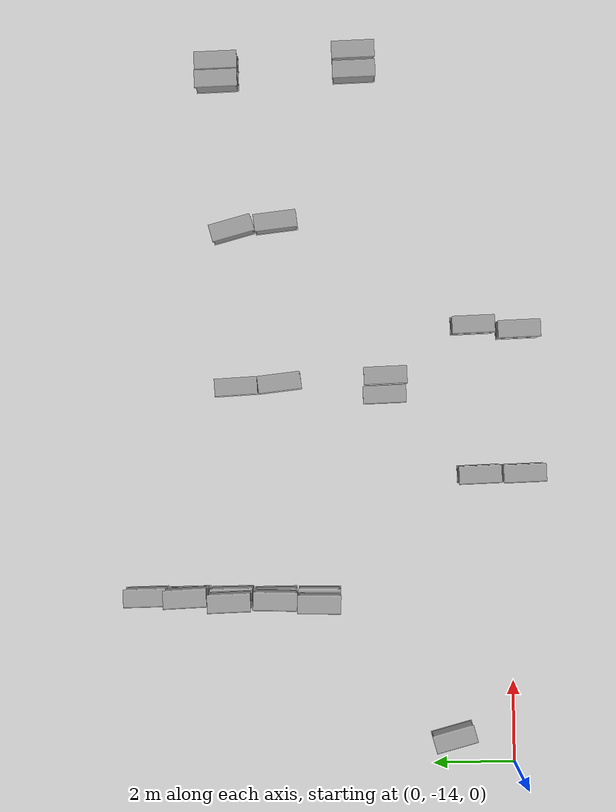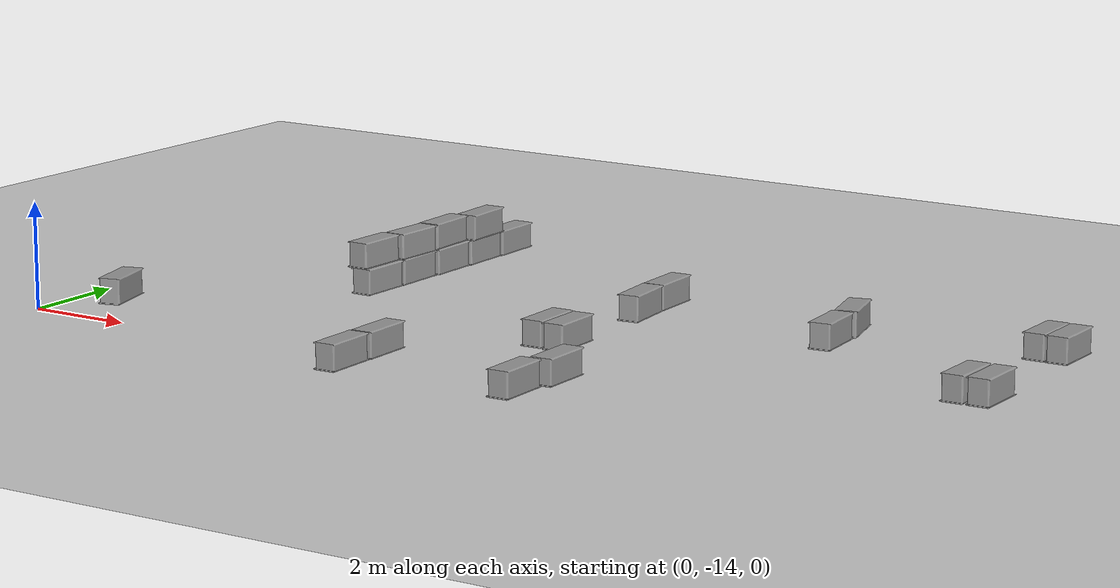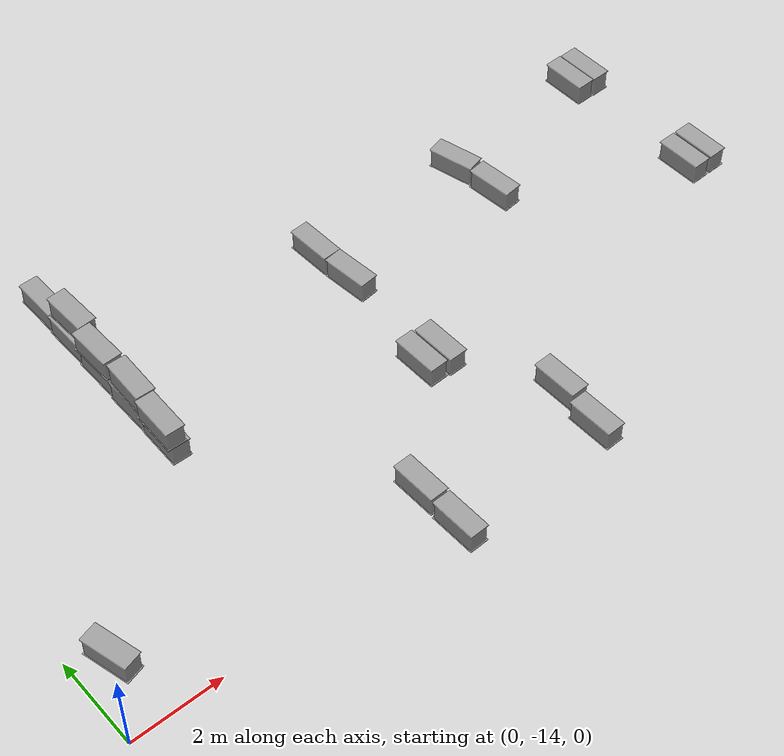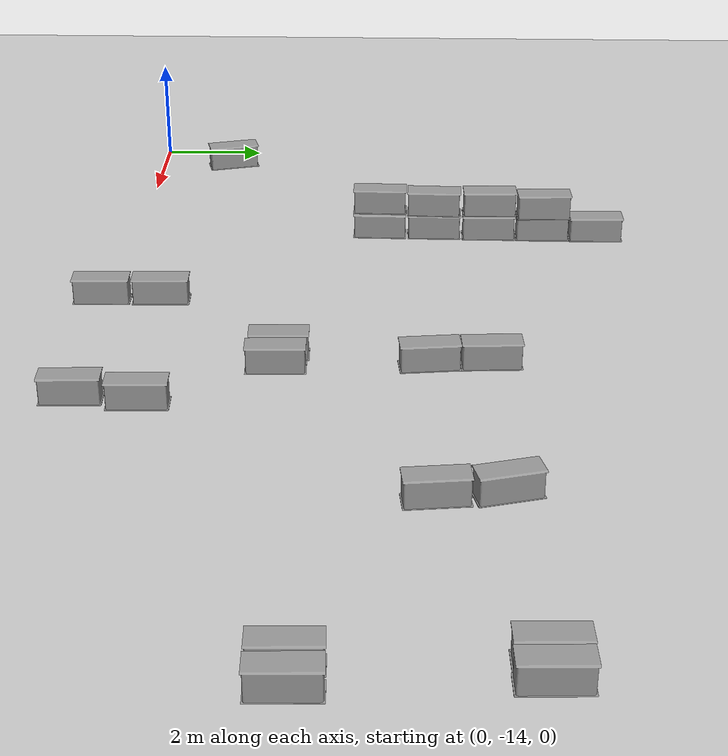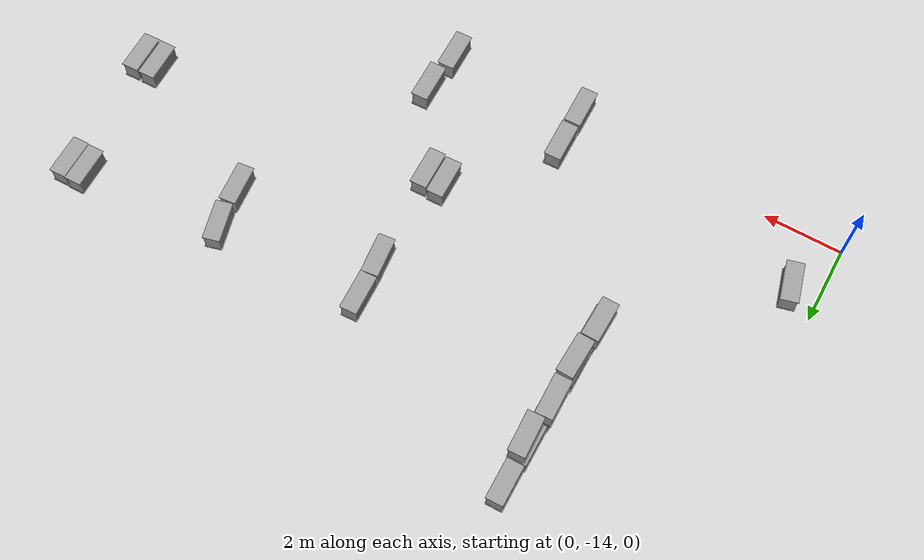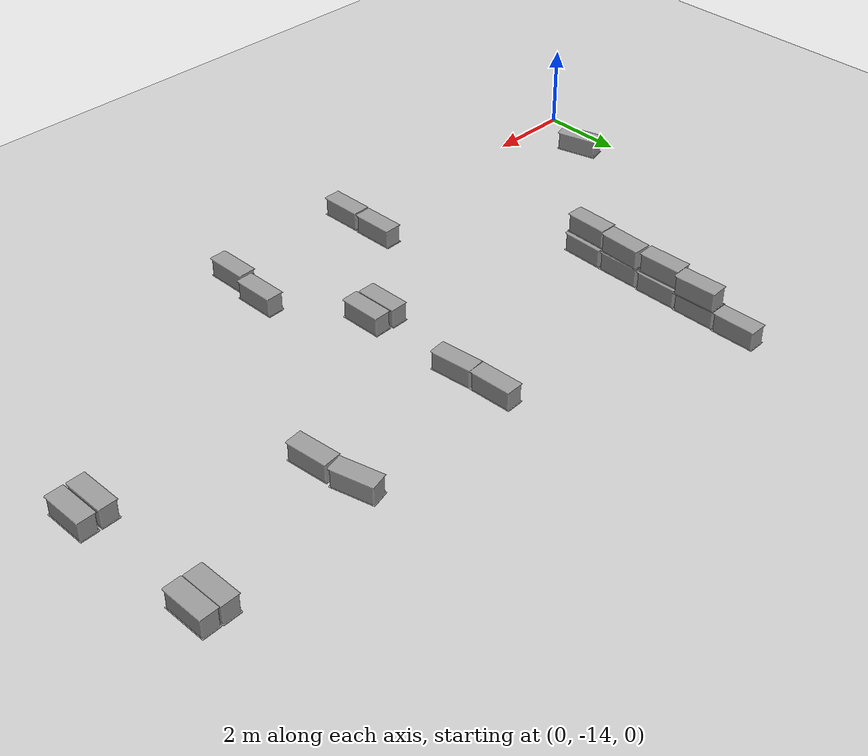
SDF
<sdf version="1.7">
 <world name="default">
  <model name="ground_plane">
   <static>1</static>
   <link name="link">
    <collision name="collision">
     <geometry><plane><normal>0 0 1</normal><size>100 100</size></plane></geometry>
     <surface>
      <contact><collide_bitmask>65535</collide_bitmask></contact>
      <friction><ode><mu>100</mu><mu2>50</mu2></ode></friction>
     </surface>
    </collision>
    <visual name="visual">
     <cast_shadows>0</cast_shadows>
     <geometry><plane><normal>0 0 1</normal><size>100 100</size></plane></geometry>
     <material>
      <script><uri>file://media/materials/scripts/gazebo.material</uri><name>Gazebo/Grey</name></script>
     </material>
    </visual>
   </link>
  </model>
  <model name="cotton_me_0_clone_6">
   <link name="link_1">
    <inertial>
     <mass>1</mass>
     <inertia>
      <ixx>0.166667</ixx>
      <ixy>0</ixy>
      <ixz>0</ixz>
      <iyy>0.166667</iyy>
      <iyz>0</iyz>
      <izz>0.166667</izz>
     </inertia>
    </inertial>
    <visual name="visual">
     <geometry><mesh><uri>/home/cyun/cotton_box.stl</uri><scale>1 1 1</scale></mesh></geometry>
     <material>
      <lighting>1</lighting>
      <script><uri>file://media/materials/scripts/gazebo.material</uri><name>Gazebo/Grey</name></script>
      <shader type="pixel"/>
     </material>
    </visual>
    <collision name="collision">
     <geometry><mesh><uri>/home/cyun/cotton_box.stl</uri><scale>1 1 1</scale></mesh></geometry>
     <surface>
      <friction>
       <ode><mu>1</mu><mu2>1</mu2><fdir1>0 0 0</fdir1><slip1>0</slip1><slip2>0</slip2></ode>
       <torsional>
        <coefficient>1</coefficient>
        <patch_radius>0</patch_radius>
        <surface_radius>0</surface_radius>
        <use_patch_radius>1</use_patch_radius>
        <ode><slip>0</slip></ode>
       </torsional>
      </friction>
      <bounce><restitution_coefficient>0</restitution_coefficient><threshold>1e+06</threshold></bounce>
      <contact>
       <collide_without_contact>0</collide_without_contact>
       <collide_without_contact_bitmask>1</collide_without_contact_bitmask>
       <collide_bitmask>1</collide_bitmask>
       <ode>
        <soft_cfm>0</soft_cfm>
        <soft_erp>0.2</soft_erp>
        <kp>1e+13</kp>
        <kd>1</kd>
        <max_vel>0.01</max_vel>
        <min_depth>0</min_depth>
       </ode>
       <bullet>
        <split_impulse>1</split_impulse>
        <split_impulse_penetration_threshold>-0.01</split_impulse_penetration_threshold>
        <soft_cfm>0</soft_cfm>
        <soft_erp>0.2</soft_erp>
        <kp>1e+13</kp>
        <kd>1</kd>
       </bullet>
      </contact>
     </surface>
    </collision>
   </link>
   <static>0</static>
   <pose>4.20703 -9.2423 0.02 -0 1e-06 -0.018184</pose>
  </model>
  <model name="cotton_me_0_clone_7">
   <link name="link_1">
    <inertial>
     <mass>1</mass>
     <inertia>
      <ixx>0.166667</ixx>
      <ixy>0</ixy>
      <ixz>0</ixz>
      <iyy>0.166667</iyy>
      <iyz>0</iyz>
      <izz>0.166667</izz>
     </inertia>
    </inertial>
    <visual name="visual">
     <geometry><mesh><uri>/home/cyun/cotton_box.stl</uri><scale>1 1 1</scale></mesh></geometry>
     <material>
      <lighting>1</lighting>
      <script><uri>file://media/materials/scripts/gazebo.material</uri><name>Gazebo/Grey</name></script>
      <shader type="pixel"/>
     </material>
    </visual>
    <collision name="collision">
     <geometry><mesh><uri>/home/cyun/cotton_box.stl</uri><scale>1 1 1</scale></mesh></geometry>
     <surface>
      <friction>
       <ode><mu>1</mu><mu2>1</mu2><fdir1>0 0 0</fdir1><slip1>0</slip1><slip2>0</slip2></ode>
       <torsional>
        <coefficient>1</coefficient>
        <patch_radius>0</patch_radius>
        <surface_radius>0</surface_radius>
        <use_patch_radius>1</use_patch_radius>
        <ode><slip>0</slip></ode>
       </torsional>
      </friction>
      <bounce><restitution_coefficient>0</restitution_coefficient><threshold>1e+06</threshold></bounce>
      <contact>
       <collide_without_contact>0</collide_without_contact>
       <collide_without_contact_bitmask>1</collide_without_contact_bitmask>
       <collide_bitmask>1</collide_bitmask>
       <ode>
        <soft_cfm>0</soft_cfm>
        <soft_erp>0.2</soft_erp>
        <kp>1e+13</kp>
        <kd>1</kd>
        <max_vel>0.01</max_vel>
        <min_depth>0</min_depth>
       </ode>
       <bullet>
        <split_impulse>1</split_impulse>
        <split_impulse_penetration_threshold>-0.01</split_impulse_penetration_threshold>
        <soft_cfm>0</soft_cfm>
        <soft_erp>0.2</soft_erp>
        <kp>1e+13</kp>
        <kd>1</kd>
       </bullet>
      </contact>
     </surface>
    </collision>
   </link>
   <static>0</static>
   <pose>4.22059 -8.17188 0.01992 4e-06 1.7e-05 0.004364</pose>
  </model>
  <model name="cotton_me_0_clone_8">
   <link name="link_1">
    <inertial>
     <mass>1</mass>
     <inertia>
      <ixx>0.166667</ixx>
      <ixy>0</ixy>
      <ixz>0</ixz>
      <iyy>0.166667</iyy>
      <iyz>0</iyz>
      <izz>0.166667</izz>
     </inertia>
    </inertial>
    <visual name="visual">
     <geometry><mesh><uri>/home/cyun/cotton_box.stl</uri><scale>1 1 1</scale></mesh></geometry>
     <material>
      <lighting>1</lighting>
      <script><uri>file://media/materials/scripts/gazebo.material</uri><name>Gazebo/Grey</name></script>
      <shader type="pixel"/>
     </material>
    </visual>
    <collision name="collision">
     <geometry><mesh><uri>/home/cyun/cotton_box.stl</uri><scale>1 1 1</scale></mesh></geometry>
     <surface>
      <friction>
       <ode><mu>1</mu><mu2>1</mu2><fdir1>0 0 0</fdir1><slip1>0</slip1><slip2>0</slip2></ode>
       <torsional>
        <coefficient>1</coefficient>
        <patch_radius>0</patch_radius>
        <surface_radius>0</surface_radius>
        <use_patch_radius>1</use_patch_radius>
        <ode><slip>0</slip></ode>
       </torsional>
      </friction>
      <bounce><restitution_coefficient>0</restitution_coefficient><threshold>1e+06</threshold></bounce>
      <contact>
       <collide_without_contact>0</collide_without_contact>
       <collide_without_contact_bitmask>1</collide_without_contact_bitmask>
       <collide_bitmask>1</collide_bitmask>
       <ode>
        <soft_cfm>0</soft_cfm>
        <soft_erp>0.2</soft_erp>
        <kp>1e+13</kp>
        <kd>1</kd>
        <max_vel>0.01</max_vel>
        <min_depth>0</min_depth>
       </ode>
       <bullet>
        <split_impulse>1</split_impulse>
        <split_impulse_penetration_threshold>-0.01</split_impulse_penetration_threshold>
        <soft_cfm>0</soft_cfm>
        <soft_erp>0.2</soft_erp>
        <kp>1e+13</kp>
        <kd>1</kd>
       </bullet>
      </contact>
     </surface>
    </collision>
   </link>
   <static>0</static>
   <pose>4.24244 -7.09633 0.02 0 -0 0.008085</pose>
  </model>
  <model name="cotton_me_0_clone_9">
   <link name="link_1">
    <inertial>
     <mass>1</mass>
     <inertia>
      <ixx>0.166667</ixx>
      <ixy>0</ixy>
      <ixz>0</ixz>
      <iyy>0.166667</iyy>
      <iyz>0</iyz>
      <izz>0.166667</izz>
     </inertia>
    </inertial>
    <visual name="visual">
     <geometry><mesh><uri>/home/cyun/cotton_box.stl</uri><scale>1 1 1</scale></mesh></geometry>
     <material>
      <lighting>1</lighting>
      <script><uri>file://media/materials/scripts/gazebo.material</uri><name>Gazebo/Grey</name></script>
      <shader type="pixel"/>
     </material>
    </visual>
    <collision name="collision">
     <geometry><mesh><uri>/home/cyun/cotton_box.stl</uri><scale>1 1 1</scale></mesh></geometry>
     <surface>
      <friction>
       <ode><mu>1</mu><mu2>1</mu2><fdir1>0 0 0</fdir1><slip1>0</slip1><slip2>0</slip2></ode>
       <torsional>
        <coefficient>1</coefficient>
        <patch_radius>0</patch_radius>
        <surface_radius>0</surface_radius>
        <use_patch_radius>1</use_patch_radius>
        <ode><slip>0</slip></ode>
       </torsional>
      </friction>
      <bounce><restitution_coefficient>0</restitution_coefficient><threshold>1e+06</threshold></bounce>
      <contact>
       <collide_without_contact>0</collide_without_contact>
       <collide_without_contact_bitmask>1</collide_without_contact_bitmask>
       <collide_bitmask>1</collide_bitmask>
       <ode>
        <soft_cfm>0</soft_cfm>
        <soft_erp>0.2</soft_erp>
        <kp>1e+13</kp>
        <kd>1</kd>
        <max_vel>0.01</max_vel>
        <min_depth>0</min_depth>
       </ode>
       <bullet>
        <split_impulse>1</split_impulse>
        <split_impulse_penetration_threshold>-0.01</split_impulse_penetration_threshold>
        <soft_cfm>0</soft_cfm>
        <soft_erp>0.2</soft_erp>
        <kp>1e+13</kp>
        <kd>1</kd>
       </bullet>
      </contact>
     </surface>
    </collision>
   </link>
   <static>0</static>
   <pose>4.25169 -6.03786 0.019958 7e-06 8e-06 0.013362</pose>
  </model>
  <model name="cotton_me_0_clone_10">
   <link name="link_1">
    <inertial>
     <mass>1</mass>
     <inertia>
      <ixx>0.166667</ixx>
      <ixy>0</ixy>
      <ixz>0</ixz>
      <iyy>0.166667</iyy>
      <iyz>0</iyz>
      <izz>0.166667</izz>
     </inertia>
    </inertial>
    <visual name="visual">
     <geometry><mesh><uri>/home/cyun/cotton_box.stl</uri><scale>1 1 1</scale></mesh></geometry>
     <material>
      <lighting>1</lighting>
      <script><uri>file://media/materials/scripts/gazebo.material</uri><name>Gazebo/Grey</name></script>
      <shader type="pixel"/>
     </material>
    </visual>
    <collision name="collision">
     <geometry><mesh><uri>/home/cyun/cotton_box.stl</uri><scale>1 1 1</scale></mesh></geometry>
     <surface>
      <friction>
       <ode><mu>1</mu><mu2>1</mu2><fdir1>0 0 0</fdir1><slip1>0</slip1><slip2>0</slip2></ode>
       <torsional>
        <coefficient>1</coefficient>
        <patch_radius>0</patch_radius>
        <surface_radius>0</surface_radius>
        <use_patch_radius>1</use_patch_radius>
        <ode><slip>0</slip></ode>
       </torsional>
      </friction>
      <bounce><restitution_coefficient>0</restitution_coefficient><threshold>1e+06</threshold></bounce>
      <contact>
       <collide_without_contact>0</collide_without_contact>
       <collide_without_contact_bitmask>1</collide_without_contact_bitmask>
       <collide_bitmask>1</collide_bitmask>
       <ode>
        <soft_cfm>0</soft_cfm>
        <soft_erp>0.2</soft_erp>
        <kp>1e+13</kp>
        <kd>1</kd>
        <max_vel>0.01</max_vel>
        <min_depth>0</min_depth>
       </ode>
       <bullet>
        <split_impulse>1</split_impulse>
        <split_impulse_penetration_threshold>-0.01</split_impulse_penetration_threshold>
        <soft_cfm>0</soft_cfm>
        <soft_erp>0.2</soft_erp>
        <kp>1e+13</kp>
        <kd>1</kd>
       </bullet>
      </contact>
     </surface>
    </collision>
   </link>
   <static>0</static>
   <pose>4.26118 -4.9877 0.01988 1e-06 2e-06 0.01653</pose>
  </model>
  <model name="cotton_me_0_clone_13">
   <link name="link_1">
    <inertial>
     <mass>1</mass>
     <inertia>
      <ixx>0.166667</ixx>
      <ixy>0</ixy>
      <ixz>0</ixz>
      <iyy>0.166667</iyy>
      <iyz>0</iyz>
      <izz>0.166667</izz>
     </inertia>
    </inertial>
    <visual name="visual">
     <geometry><mesh><uri>/home/cyun/cotton_box.stl</uri><scale>1 1 1</scale></mesh></geometry>
     <material>
      <lighting>1</lighting>
      <script><uri>file://media/materials/scripts/gazebo.material</uri><name>Gazebo/Grey</name></script>
      <shader type="pixel"/>
     </material>
    </visual>
    <collision name="collision">
     <geometry><mesh><uri>/home/cyun/cotton_box.stl</uri><scale>1 1 1</scale></mesh></geometry>
     <surface>
      <friction>
       <ode><mu>1</mu><mu2>1</mu2><fdir1>0 0 0</fdir1><slip1>0</slip1><slip2>0</slip2></ode>
       <torsional>
        <coefficient>1</coefficient>
        <patch_radius>0</patch_radius>
        <surface_radius>0</surface_radius>
        <use_patch_radius>1</use_patch_radius>
        <ode><slip>0</slip></ode>
       </torsional>
      </friction>
      <bounce><restitution_coefficient>0</restitution_coefficient><threshold>1e+06</threshold></bounce>
      <contact>
       <collide_without_contact>0</collide_without_contact>
       <collide_without_contact_bitmask>1</collide_without_contact_bitmask>
       <collide_bitmask>1</collide_bitmask>
       <ode>
        <soft_cfm>0</soft_cfm>
        <soft_erp>0.2</soft_erp>
        <kp>1e+13</kp>
        <kd>1</kd>
        <max_vel>0.01</max_vel>
        <min_depth>0</min_depth>
       </ode>
       <bullet>
        <split_impulse>1</split_impulse>
        <split_impulse_penetration_threshold>-0.01</split_impulse_penetration_threshold>
        <soft_cfm>0</soft_cfm>
        <soft_erp>0.2</soft_erp>
        <kp>1e+13</kp>
        <kd>1</kd>
       </bullet>
      </contact>
     </surface>
    </collision>
   </link>
   <static>0</static>
   <pose>0.710491 -12.4974 0.019995 1e-05 -0 0.263069</pose>
  </model>
  <model name="cotton_me_0_clone_6_clone">
   <link name="link_1">
    <inertial>
     <mass>1</mass>
     <inertia>
      <ixx>0.166667</ixx>
      <ixy>0</ixy>
      <ixz>0</ixz>
      <iyy>0.166667</iyy>
      <iyz>0</iyz>
      <izz>0.166667</izz>
     </inertia>
    </inertial>
    <visual name="visual">
     <geometry><mesh><uri>/home/cyun/cotton_box.stl</uri><scale>1 1 1</scale></mesh></geometry>
     <material>
      <lighting>1</lighting>
      <script><uri>file://media/materials/scripts/gazebo.material</uri><name>Gazebo/Grey</name></script>
      <shader type="pixel"/>
     </material>
    </visual>
    <collision name="collision">
     <geometry><mesh><uri>/home/cyun/cotton_box.stl</uri><scale>1 1 1</scale></mesh></geometry>
     <surface>
      <friction>
       <ode><mu>1</mu><mu2>1</mu2><fdir1>0 0 0</fdir1><slip1>0</slip1><slip2>0</slip2></ode>
       <torsional>
        <coefficient>1</coefficient>
        <patch_radius>0</patch_radius>
        <surface_radius>0</surface_radius>
        <use_patch_radius>1</use_patch_radius>
        <ode><slip>0</slip></ode>
       </torsional>
      </friction>
      <bounce><restitution_coefficient>0</restitution_coefficient><threshold>1e+06</threshold></bounce>
      <contact>
       <collide_without_contact>0</collide_without_contact>
       <collide_without_contact_bitmask>1</collide_without_contact_bitmask>
       <collide_bitmask>1</collide_bitmask>
       <ode>
        <soft_cfm>0</soft_cfm>
        <soft_erp>0.2</soft_erp>
        <kp>1e+13</kp>
        <kd>1</kd>
        <max_vel>0.01</max_vel>
        <min_depth>0</min_depth>
       </ode>
       <bullet>
        <split_impulse>1</split_impulse>
        <split_impulse_penetration_threshold>-0.01</split_impulse_penetration_threshold>
        <soft_cfm>0</soft_cfm>
        <soft_erp>0.2</soft_erp>
        <kp>1e+13</kp>
        <kd>1</kd>
       </bullet>
      </contact>
     </surface>
    </collision>
   </link>
   <static>0</static>
   <pose>4.13047 -9.2431 0.510001 1e-06 -2e-06 -0.021211</pose>
  </model>
  <model name="cotton_me_0_clone_6_clone_clone">
   <link name="link_1">
    <inertial>
     <mass>1</mass>
     <inertia>
      <ixx>0.166667</ixx>
      <ixy>0</ixy>
      <ixz>0</ixz>
      <iyy>0.166667</iyy>
      <iyz>0</iyz>
      <izz>0.166667</izz>
     </inertia>
    </inertial>
    <visual name="visual">
     <geometry><mesh><uri>/home/cyun/cotton_box.stl</uri><scale>1 1 1</scale></mesh></geometry>
     <material>
      <lighting>1</lighting>
      <script><uri>file://media/materials/scripts/gazebo.material</uri><name>Gazebo/Grey</name></script>
      <shader type="pixel"/>
     </material>
    </visual>
    <collision name="collision">
     <geometry><mesh><uri>/home/cyun/cotton_box.stl</uri><scale>1 1 1</scale></mesh></geometry>
     <surface>
      <friction>
       <ode><mu>1</mu><mu2>1</mu2><fdir1>0 0 0</fdir1><slip1>0</slip1><slip2>0</slip2></ode>
       <torsional>
        <coefficient>1</coefficient>
        <patch_radius>0</patch_radius>
        <surface_radius>0</surface_radius>
        <use_patch_radius>1</use_patch_radius>
        <ode><slip>0</slip></ode>
       </torsional>
      </friction>
      <bounce><restitution_coefficient>0</restitution_coefficient><threshold>1e+06</threshold></bounce>
      <contact>
       <collide_without_contact>0</collide_without_contact>
       <collide_without_contact_bitmask>1</collide_without_contact_bitmask>
       <collide_bitmask>1</collide_bitmask>
       <ode>
        <soft_cfm>0</soft_cfm>
        <soft_erp>0.2</soft_erp>
        <kp>1e+13</kp>
        <kd>1</kd>
        <max_vel>0.01</max_vel>
        <min_depth>0</min_depth>
       </ode>
       <bullet>
        <split_impulse>1</split_impulse>
        <split_impulse_penetration_threshold>-0.01</split_impulse_penetration_threshold>
        <soft_cfm>0</soft_cfm>
        <soft_erp>0.2</soft_erp>
        <kp>1e+13</kp>
        <kd>1</kd>
       </bullet>
      </contact>
     </surface>
    </collision>
   </link>
   <static>0</static>
   <pose>4.22074 -8.18186 0.509921 4e-06 1.4e-05 -0.0332</pose>
  </model>
  <model name="cotton_me_0_clone_6_clone_clone_0">
   <link name="link_1">
    <inertial>
     <mass>1</mass>
     <inertia>
      <ixx>0.166667</ixx>
      <ixy>0</ixy>
      <ixz>0</ixz>
      <iyy>0.166667</iyy>
      <iyz>0</iyz>
      <izz>0.166667</izz>
     </inertia>
    </inertial>
    <visual name="visual">
     <geometry><mesh><uri>/home/cyun/cotton_box.stl</uri><scale>1 1 1</scale></mesh></geometry>
     <material>
      <lighting>1</lighting>
      <script><uri>file://media/materials/scripts/gazebo.material</uri><name>Gazebo/Grey</name></script>
      <shader type="pixel"/>
     </material>
    </visual>
    <collision name="collision">
     <geometry><mesh><uri>/home/cyun/cotton_box.stl</uri><scale>1 1 1</scale></mesh></geometry>
     <surface>
      <friction>
       <ode><mu>1</mu><mu2>1</mu2><fdir1>0 0 0</fdir1><slip1>0</slip1><slip2>0</slip2></ode>
       <torsional>
        <coefficient>1</coefficient>
        <patch_radius>0</patch_radius>
        <surface_radius>0</surface_radius>
        <use_patch_radius>1</use_patch_radius>
        <ode><slip>0</slip></ode>
       </torsional>
      </friction>
      <bounce><restitution_coefficient>0</restitution_coefficient><threshold>1e+06</threshold></bounce>
      <contact>
       <collide_without_contact>0</collide_without_contact>
       <collide_without_contact_bitmask>1</collide_without_contact_bitmask>
       <collide_bitmask>1</collide_bitmask>
       <ode>
        <soft_cfm>0</soft_cfm>
        <soft_erp>0.2</soft_erp>
        <kp>1e+13</kp>
        <kd>1</kd>
        <max_vel>0.01</max_vel>
        <min_depth>0</min_depth>
       </ode>
       <bullet>
        <split_impulse>1</split_impulse>
        <split_impulse_penetration_threshold>-0.01</split_impulse_penetration_threshold>
        <soft_cfm>0</soft_cfm>
        <soft_erp>0.2</soft_erp>
        <kp>1e+13</kp>
        <kd>1</kd>
       </bullet>
      </contact>
     </surface>
    </collision>
   </link>
   <static>0</static>
   <pose>4.19469 -7.08571 0.51 2e-06 3e-06 0.030379</pose>
  </model>
  <model name="cotton_me_0_clone_6_clone_clone_1">
   <link name="link_1">
    <inertial>
     <mass>1</mass>
     <inertia>
      <ixx>0.166667</ixx>
      <ixy>0</ixy>
      <ixz>0</ixz>
      <iyy>0.166667</iyy>
      <iyz>0</iyz>
      <izz>0.166667</izz>
     </inertia>
    </inertial>
    <visual name="visual">
     <geometry><mesh><uri>/home/cyun/cotton_box.stl</uri><scale>1 1 1</scale></mesh></geometry>
     <material>
      <lighting>1</lighting>
      <script><uri>file://media/materials/scripts/gazebo.material</uri><name>Gazebo/Grey</name></script>
      <shader type="pixel"/>
     </material>
    </visual>
    <collision name="collision">
     <geometry><mesh><uri>/home/cyun/cotton_box.stl</uri><scale>1 1 1</scale></mesh></geometry>
     <surface>
      <friction>
       <ode><mu>1</mu><mu2>1</mu2><fdir1>0 0 0</fdir1><slip1>0</slip1><slip2>0</slip2></ode>
       <torsional>
        <coefficient>1</coefficient>
        <patch_radius>0</patch_radius>
        <surface_radius>0</surface_radius>
        <use_patch_radius>1</use_patch_radius>
        <ode><slip>0</slip></ode>
       </torsional>
      </friction>
      <bounce><restitution_coefficient>0</restitution_coefficient><threshold>1e+06</threshold></bounce>
      <contact>
       <collide_without_contact>0</collide_without_contact>
       <collide_without_contact_bitmask>1</collide_without_contact_bitmask>
       <collide_bitmask>1</collide_bitmask>
       <ode>
        <soft_cfm>0</soft_cfm>
        <soft_erp>0.2</soft_erp>
        <kp>1e+13</kp>
        <kd>1</kd>
        <max_vel>0.01</max_vel>
        <min_depth>0</min_depth>
       </ode>
       <bullet>
        <split_impulse>1</split_impulse>
        <split_impulse_penetration_threshold>-0.01</split_impulse_penetration_threshold>
        <soft_cfm>0</soft_cfm>
        <soft_erp>0.2</soft_erp>
        <kp>1e+13</kp>
        <kd>1</kd>
       </bullet>
      </contact>
     </surface>
    </collision>
   </link>
   <static>0</static>
   <pose>4.31648 -6.03112 0.509973 5.7e-05 1.3e-05 0.042706</pose>
  </model>
  <model name="cotton_me_0_clone_13_clone">
   <link name="link_1">
    <inertial>
     <mass>1</mass>
     <inertia>
      <ixx>0.166667</ixx>
      <ixy>0</ixy>
      <ixz>0</ixz>
      <iyy>0.166667</iyy>
      <iyz>0</iyz>
      <izz>0.166667</izz>
     </inertia>
    </inertial>
    <visual name="visual">
     <geometry><mesh><uri>/home/cyun/cotton_box.stl</uri><scale>1 1 1</scale></mesh></geometry>
     <material>
      <lighting>1</lighting>
      <script><uri>file://media/materials/scripts/gazebo.material</uri><name>Gazebo/Grey</name></script>
      <shader type="pixel"/>
     </material>
    </visual>
    <collision name="collision">
     <geometry><mesh><uri>/home/cyun/cotton_box.stl</uri><scale>1 1 1</scale></mesh></geometry>
     <surface>
      <friction>
       <ode><mu>1</mu><mu2>1</mu2><fdir1>0 0 0</fdir1><slip1>0</slip1><slip2>0</slip2></ode>
       <torsional>
        <coefficient>1</coefficient>
        <patch_radius>0</patch_radius>
        <surface_radius>0</surface_radius>
        <use_patch_radius>1</use_patch_radius>
        <ode><slip>0</slip></ode>
       </torsional>
      </friction>
      <bounce><restitution_coefficient>0</restitution_coefficient><threshold>1e+06</threshold></bounce>
      <contact>
       <collide_without_contact>0</collide_without_contact>
       <collide_without_contact_bitmask>1</collide_without_contact_bitmask>
       <collide_bitmask>1</collide_bitmask>
       <ode>
        <soft_cfm>0</soft_cfm>
        <soft_erp>0.2</soft_erp>
        <kp>1e+13</kp>
        <kd>1</kd>
        <max_vel>0.01</max_vel>
        <min_depth>0</min_depth>
       </ode>
       <bullet>
        <split_impulse>1</split_impulse>
        <split_impulse_penetration_threshold>-0.01</split_impulse_penetration_threshold>
        <soft_cfm>0</soft_cfm>
        <soft_erp>0.2</soft_erp>
        <kp>1e+13</kp>
        <kd>1</kd>
       </bullet>
      </contact>
     </surface>
    </collision>
   </link>
   <static>0</static>
   <pose>9.45494 -8.334 0.019992 -1.6e-05 0 0.111059</pose>
  </model>
  <model name="cotton_me_0_clone_13_clone_clone">
   <link name="link_1">
    <inertial>
     <mass>1</mass>
     <inertia>
      <ixx>0.166667</ixx>
      <ixy>0</ixy>
      <ixz>0</ixz>
      <iyy>0.166667</iyy>
      <iyz>0</iyz>
      <izz>0.166667</izz>
     </inertia>
    </inertial>
    <visual name="visual">
     <geometry><mesh><uri>/home/cyun/cotton_box.stl</uri><scale>1 1 1</scale></mesh></geometry>
     <material>
      <lighting>1</lighting>
      <script><uri>file://media/materials/scripts/gazebo.material</uri><name>Gazebo/Grey</name></script>
      <shader type="pixel"/>
     </material>
    </visual>
    <collision name="collision">
     <geometry><mesh><uri>/home/cyun/cotton_box.stl</uri><scale>1 1 1</scale></mesh></geometry>
     <surface>
      <friction>
       <ode><mu>1</mu><mu2>1</mu2><fdir1>0 0 0</fdir1><slip1>0</slip1><slip2>0</slip2></ode>
       <torsional>
        <coefficient>1</coefficient>
        <patch_radius>0</patch_radius>
        <surface_radius>0</surface_radius>
        <use_patch_radius>1</use_patch_radius>
        <ode><slip>0</slip></ode>
       </torsional>
      </friction>
      <bounce><restitution_coefficient>0</restitution_coefficient><threshold>1e+06</threshold></bounce>
      <contact>
       <collide_without_contact>0</collide_without_contact>
       <collide_without_contact_bitmask>1</collide_without_contact_bitmask>
       <collide_bitmask>1</collide_bitmask>
       <ode>
        <soft_cfm>0</soft_cfm>
        <soft_erp>0.2</soft_erp>
        <kp>1e+13</kp>
        <kd>1</kd>
        <max_vel>0.01</max_vel>
        <min_depth>0</min_depth>
       </ode>
       <bullet>
        <split_impulse>1</split_impulse>
        <split_impulse_penetration_threshold>-0.01</split_impulse_penetration_threshold>
        <soft_cfm>0</soft_cfm>
        <soft_erp>0.2</soft_erp>
        <kp>1e+13</kp>
        <kd>1</kd>
       </bullet>
      </contact>
     </surface>
    </collision>
   </link>
   <static>0</static>
   <pose>9.37199 -7.28478 0.019992 -1.6e-05 0 0.051878</pose>
  </model>
  <model name="cotton_me_0_clone_13_clone_clone_0">
   <link name="link_1">
    <inertial>
     <mass>1</mass>
     <inertia>
      <ixx>0.166667</ixx>
      <ixy>0</ixy>
      <ixz>0</ixz>
      <iyy>0.166667</iyy>
      <iyz>0</iyz>
      <izz>0.166667</izz>
     </inertia>
    </inertial>
    <visual name="visual">
     <geometry><mesh><uri>/home/cyun/cotton_box.stl</uri><scale>1 1 1</scale></mesh></geometry>
     <material>
      <lighting>1</lighting>
      <script><uri>file://media/materials/scripts/gazebo.material</uri><name>Gazebo/Grey</name></script>
      <shader type="pixel"/>
     </material>
    </visual>
    <collision name="collision">
     <geometry><mesh><uri>/home/cyun/cotton_box.stl</uri><scale>1 1 1</scale></mesh></geometry>
     <surface>
      <friction>
       <ode><mu>1</mu><mu2>1</mu2><fdir1>0 0 0</fdir1><slip1>0</slip1><slip2>0</slip2></ode>
       <torsional>
        <coefficient>1</coefficient>
        <patch_radius>0</patch_radius>
        <surface_radius>0</surface_radius>
        <use_patch_radius>1</use_patch_radius>
        <ode><slip>0</slip></ode>
       </torsional>
      </friction>
      <bounce><restitution_coefficient>0</restitution_coefficient><threshold>1e+06</threshold></bounce>
      <contact>
       <collide_without_contact>0</collide_without_contact>
       <collide_without_contact_bitmask>1</collide_without_contact_bitmask>
       <collide_bitmask>1</collide_bitmask>
       <ode>
        <soft_cfm>0</soft_cfm>
        <soft_erp>0.2</soft_erp>
        <kp>1e+13</kp>
        <kd>1</kd>
        <max_vel>0.01</max_vel>
        <min_depth>0</min_depth>
       </ode>
       <bullet>
        <split_impulse>1</split_impulse>
        <split_impulse_penetration_threshold>-0.01</split_impulse_penetration_threshold>
        <soft_cfm>0</soft_cfm>
        <soft_erp>0.2</soft_erp>
        <kp>1e+13</kp>
        <kd>1</kd>
       </bullet>
      </contact>
     </surface>
    </collision>
   </link>
   <static>0</static>
   <pose>13.3921 -8.29623 0.019992 -1.6e-05 -0 0.111034</pose>
  </model>
  <model name="cotton_me_0_clone_13_clone_0">
   <link name="link_1">
    <inertial>
     <mass>1</mass>
     <inertia>
      <ixx>0.166667</ixx>
      <ixy>0</ixy>
      <ixz>0</ixz>
      <iyy>0.166667</iyy>
      <iyz>0</iyz>
      <izz>0.166667</izz>
     </inertia>
    </inertial>
    <visual name="visual">
     <geometry><mesh><uri>/home/cyun/cotton_box.stl</uri><scale>1 1 1</scale></mesh></geometry>
     <material>
      <lighting>1</lighting>
      <script><uri>file://media/materials/scripts/gazebo.material</uri><name>Gazebo/Grey</name></script>
      <shader type="pixel"/>
     </material>
    </visual>
    <collision name="collision">
     <geometry><mesh><uri>/home/cyun/cotton_box.stl</uri><scale>1 1 1</scale></mesh></geometry>
     <surface>
      <friction>
       <ode><mu>1</mu><mu2>1</mu2><fdir1>0 0 0</fdir1><slip1>0</slip1><slip2>0</slip2></ode>
       <torsional>
        <coefficient>1</coefficient>
        <patch_radius>0</patch_radius>
        <surface_radius>0</surface_radius>
        <use_patch_radius>1</use_patch_radius>
        <ode><slip>0</slip></ode>
       </torsional>
      </friction>
      <bounce><restitution_coefficient>0</restitution_coefficient><threshold>1e+06</threshold></bounce>
      <contact>
       <collide_without_contact>0</collide_without_contact>
       <collide_without_contact_bitmask>1</collide_without_contact_bitmask>
       <collide_bitmask>1</collide_bitmask>
       <ode>
        <soft_cfm>0</soft_cfm>
        <soft_erp>0.2</soft_erp>
        <kp>1e+13</kp>
        <kd>1</kd>
        <max_vel>0.01</max_vel>
        <min_depth>0</min_depth>
       </ode>
       <bullet>
        <split_impulse>1</split_impulse>
        <split_impulse_penetration_threshold>-0.01</split_impulse_penetration_threshold>
        <soft_cfm>0</soft_cfm>
        <soft_erp>0.2</soft_erp>
        <kp>1e+13</kp>
        <kd>1</kd>
       </bullet>
      </contact>
     </surface>
    </collision>
   </link>
   <static>0</static>
   <pose>13.2304 -7.2253 0.019995 -1e-05 -0 0.263069</pose>
  </model>
  <model name="cotton_me_0_clone_13_clone_4_clone_3">
   <link name="link_1">
    <inertial>
     <mass>1</mass>
     <inertia>
      <ixx>0.166667</ixx>
      <ixy>0</ixy>
      <ixz>0</ixz>
      <iyy>0.166667</iyy>
      <iyz>0</iyz>
      <izz>0.166667</izz>
     </inertia>
    </inertial>
    <visual name="visual">
     <geometry><mesh><uri>/home/cyun/cotton_box.stl</uri><scale>1 1 1</scale></mesh></geometry>
     <material>
      <lighting>1</lighting>
      <script><uri>file://media/materials/scripts/gazebo.material</uri><name>Gazebo/Grey</name></script>
      <shader type="pixel"/>
     </material>
    </visual>
    <collision name="collision">
     <geometry><mesh><uri>/home/cyun/cotton_box.stl</uri><scale>1 1 1</scale></mesh></geometry>
     <surface>
      <friction>
       <ode><mu>1</mu><mu2>1</mu2><fdir1>0 0 0</fdir1><slip1>0</slip1><slip2>0</slip2></ode>
       <torsional>
        <coefficient>1</coefficient>
        <patch_radius>0</patch_radius>
        <surface_radius>0</surface_radius>
        <use_patch_radius>1</use_patch_radius>
        <ode><slip>0</slip></ode>
       </torsional>
      </friction>
      <bounce><restitution_coefficient>0</restitution_coefficient><threshold>1e+06</threshold></bounce>
      <contact>
       <collide_without_contact>0</collide_without_contact>
       <collide_without_contact_bitmask>1</collide_without_contact_bitmask>
       <collide_bitmask>1</collide_bitmask>
       <ode>
        <soft_cfm>0</soft_cfm>
        <soft_erp>0.2</soft_erp>
        <kp>1e+13</kp>
        <kd>1</kd>
        <max_vel>0.01</max_vel>
        <min_depth>0</min_depth>
       </ode>
       <bullet>
        <split_impulse>1</split_impulse>
        <split_impulse_penetration_threshold>-0.01</split_impulse_penetration_threshold>
        <soft_cfm>0</soft_cfm>
        <soft_erp>0.2</soft_erp>
        <kp>1e+13</kp>
        <kd>1</kd>
       </bullet>
      </contact>
     </surface>
    </collision>
   </link>
   <static>0</static>
   <pose>17.0566 -10.263 0.019995 1e-05 0 0.031116</pose>
  </model>
  <model name="cotton_me_0_clone_13_clone_4_clone_4">
   <link name="link_1">
    <inertial>
     <mass>1</mass>
     <inertia>
      <ixx>0.166667</ixx>
      <ixy>0</ixy>
      <ixz>0</ixz>
      <iyy>0.166667</iyy>
      <iyz>0</iyz>
      <izz>0.166667</izz>
     </inertia>
    </inertial>
    <visual name="visual">
     <geometry><mesh><uri>/home/cyun/cotton_box.stl</uri><scale>1 1 1</scale></mesh></geometry>
     <material>
      <lighting>1</lighting>
      <script><uri>file://media/materials/scripts/gazebo.material</uri><name>Gazebo/Grey</name></script>
      <shader type="pixel"/>
     </material>
    </visual>
    <collision name="collision">
     <geometry><mesh><uri>/home/cyun/cotton_box.stl</uri><scale>1 1 1</scale></mesh></geometry>
     <surface>
      <friction>
       <ode><mu>1</mu><mu2>1</mu2><fdir1>0 0 0</fdir1><slip1>0</slip1><slip2>0</slip2></ode>
       <torsional>
        <coefficient>1</coefficient>
        <patch_radius>0</patch_radius>
        <surface_radius>0</surface_radius>
        <use_patch_radius>1</use_patch_radius>
        <ode><slip>0</slip></ode>
       </torsional>
      </friction>
      <bounce><restitution_coefficient>0</restitution_coefficient><threshold>1e+06</threshold></bounce>
      <contact>
       <collide_without_contact>0</collide_without_contact>
       <collide_without_contact_bitmask>1</collide_without_contact_bitmask>
       <collide_bitmask>1</collide_bitmask>
       <ode>
        <soft_cfm>0</soft_cfm>
        <soft_erp>0.2</soft_erp>
        <kp>1e+13</kp>
        <kd>1</kd>
        <max_vel>0.01</max_vel>
        <min_depth>0</min_depth>
       </ode>
       <bullet>
        <split_impulse>1</split_impulse>
        <split_impulse_penetration_threshold>-0.01</split_impulse_penetration_threshold>
        <soft_cfm>0</soft_cfm>
        <soft_erp>0.2</soft_erp>
        <kp>1e+13</kp>
        <kd>1</kd>
       </bullet>
      </contact>
     </surface>
    </collision>
   </link>
   <static>0</static>
   <pose>17.5318 -10.2499 0.019995 1e-05 0 0.031116</pose>
  </model>
  <model name="cotton_me_0_clone_13_clone_4_clone_5">
   <link name="link_1">
    <inertial>
     <mass>1</mass>
     <inertia>
      <ixx>0.166667</ixx>
      <ixy>0</ixy>
      <ixz>0</ixz>
      <iyy>0.166667</iyy>
      <iyz>0</iyz>
      <izz>0.166667</izz>
     </inertia>
    </inertial>
    <visual name="visual">
     <geometry><mesh><uri>/home/cyun/cotton_box.stl</uri><scale>1 1 1</scale></mesh></geometry>
     <material>
      <lighting>1</lighting>
      <script><uri>file://media/materials/scripts/gazebo.material</uri><name>Gazebo/Grey</name></script>
      <shader type="pixel"/>
     </material>
    </visual>
    <collision name="collision">
     <geometry><mesh><uri>/home/cyun/cotton_box.stl</uri><scale>1 1 1</scale></mesh></geometry>
     <surface>
      <friction>
       <ode><mu>1</mu><mu2>1</mu2><fdir1>0 0 0</fdir1><slip1>0</slip1><slip2>0</slip2></ode>
       <torsional>
        <coefficient>1</coefficient>
        <patch_radius>0</patch_radius>
        <surface_radius>0</surface_radius>
        <use_patch_radius>1</use_patch_radius>
        <ode><slip>0</slip></ode>
       </torsional>
      </friction>
      <bounce><restitution_coefficient>0</restitution_coefficient><threshold>1e+06</threshold></bounce>
      <contact>
       <collide_without_contact>0</collide_without_contact>
       <collide_without_contact_bitmask>1</collide_without_contact_bitmask>
       <collide_bitmask>1</collide_bitmask>
       <ode>
        <soft_cfm>0</soft_cfm>
        <soft_erp>0.2</soft_erp>
        <kp>1e+13</kp>
        <kd>1</kd>
        <max_vel>0.01</max_vel>
        <min_depth>0</min_depth>
       </ode>
       <bullet>
        <split_impulse>1</split_impulse>
        <split_impulse_penetration_threshold>-0.01</split_impulse_penetration_threshold>
        <soft_cfm>0</soft_cfm>
        <soft_erp>0.2</soft_erp>
        <kp>1e+13</kp>
        <kd>1</kd>
       </bullet>
      </contact>
     </surface>
    </collision>
   </link>
   <static>0</static>
   <pose>16.8757 -6.90285 0.019995 1e-05 0 0.031116</pose>
  </model>
  <model name="cotton_me_0_clone_13_clone_4_clone_6">
   <link name="link_1">
    <inertial>
     <mass>1</mass>
     <inertia>
      <ixx>0.166667</ixx>
      <ixy>0</ixy>
      <ixz>0</ixz>
      <iyy>0.166667</iyy>
      <iyz>0</iyz>
      <izz>0.166667</izz>
     </inertia>
    </inertial>
    <visual name="visual">
     <geometry><mesh><uri>/home/cyun/cotton_box.stl</uri><scale>1 1 1</scale></mesh></geometry>
     <material>
      <lighting>1</lighting>
      <script><uri>file://media/materials/scripts/gazebo.material</uri><name>Gazebo/Grey</name></script>
      <shader type="pixel"/>
     </material>
    </visual>
    <collision name="collision">
     <geometry><mesh><uri>/home/cyun/cotton_box.stl</uri><scale>1 1 1</scale></mesh></geometry>
     <surface>
      <friction>
       <ode><mu>1</mu><mu2>1</mu2><fdir1>0 0 0</fdir1><slip1>0</slip1><slip2>0</slip2></ode>
       <torsional>
        <coefficient>1</coefficient>
        <patch_radius>0</patch_radius>
        <surface_radius>0</surface_radius>
        <use_patch_radius>1</use_patch_radius>
        <ode><slip>0</slip></ode>
       </torsional>
      </friction>
      <bounce><restitution_coefficient>0</restitution_coefficient><threshold>1e+06</threshold></bounce>
      <contact>
       <collide_without_contact>0</collide_without_contact>
       <collide_without_contact_bitmask>1</collide_without_contact_bitmask>
       <collide_bitmask>1</collide_bitmask>
       <ode>
        <soft_cfm>0</soft_cfm>
        <soft_erp>0.2</soft_erp>
        <kp>1e+13</kp>
        <kd>1</kd>
        <max_vel>0.01</max_vel>
        <min_depth>0</min_depth>
       </ode>
       <bullet>
        <split_impulse>1</split_impulse>
        <split_impulse_penetration_threshold>-0.01</split_impulse_penetration_threshold>
        <soft_cfm>0</soft_cfm>
        <soft_erp>0.2</soft_erp>
        <kp>1e+13</kp>
        <kd>1</kd>
       </bullet>
      </contact>
     </surface>
    </collision>
   </link>
   <static>0</static>
   <pose>17.3205 -6.90355 0.019995 1e-05 0 0.031116</pose>
  </model>
  <model name="cotton_me_0_clone_13_clone_4_clone_7">
   <link name="link_1">
    <inertial>
     <mass>1</mass>
     <inertia>
      <ixx>0.166667</ixx>
      <ixy>0</ixy>
      <ixz>0</ixz>
      <iyy>0.166667</iyy>
      <iyz>0</iyz>
      <izz>0.166667</izz>
     </inertia>
    </inertial>
    <visual name="visual">
     <geometry><mesh><uri>/home/cyun/cotton_box.stl</uri><scale>1 1 1</scale></mesh></geometry>
     <material>
      <lighting>1</lighting>
      <script><uri>file://media/materials/scripts/gazebo.material</uri><name>Gazebo/Grey</name></script>
      <shader type="pixel"/>
     </material>
    </visual>
    <collision name="collision">
     <geometry><mesh><uri>/home/cyun/cotton_box.stl</uri><scale>1 1 1</scale></mesh></geometry>
     <surface>
      <friction>
       <ode><mu>1</mu><mu2>1</mu2><fdir1>0 0 0</fdir1><slip1>0</slip1><slip2>0</slip2></ode>
       <torsional>
        <coefficient>1</coefficient>
        <patch_radius>0</patch_radius>
        <surface_radius>0</surface_radius>
        <use_patch_radius>1</use_patch_radius>
        <ode><slip>0</slip></ode>
       </torsional>
      </friction>
      <bounce><restitution_coefficient>0</restitution_coefficient><threshold>1e+06</threshold></bounce>
      <contact>
       <collide_without_contact>0</collide_without_contact>
       <collide_without_contact_bitmask>1</collide_without_contact_bitmask>
       <collide_bitmask>1</collide_bitmask>
       <ode>
        <soft_cfm>0</soft_cfm>
        <soft_erp>0.2</soft_erp>
        <kp>1e+13</kp>
        <kd>1</kd>
        <max_vel>0.01</max_vel>
        <min_depth>0</min_depth>
       </ode>
       <bullet>
        <split_impulse>1</split_impulse>
        <split_impulse_penetration_threshold>-0.01</split_impulse_penetration_threshold>
        <soft_cfm>0</soft_cfm>
        <soft_erp>0.2</soft_erp>
        <kp>1e+13</kp>
        <kd>1</kd>
       </bullet>
      </contact>
     </surface>
    </collision>
   </link>
   <static>0</static>
   <pose>9.13072 -10.9024 0.019995 1e-05 0 0.031116</pose>
  </model>
  <model name="cotton_me_0_clone_13_clone_4_clone_8">
   <link name="link_1">
    <inertial>
     <mass>1</mass>
     <inertia>
      <ixx>0.166667</ixx>
      <ixy>0</ixy>
      <ixz>0</ixz>
      <iyy>0.166667</iyy>
      <iyz>0</iyz>
      <izz>0.166667</izz>
     </inertia>
    </inertial>
    <visual name="visual">
     <geometry><mesh><uri>/home/cyun/cotton_box.stl</uri><scale>1 1 1</scale></mesh></geometry>
     <material>
      <lighting>1</lighting>
      <script><uri>file://media/materials/scripts/gazebo.material</uri><name>Gazebo/Grey</name></script>
      <shader type="pixel"/>
     </material>
    </visual>
    <collision name="collision">
     <geometry><mesh><uri>/home/cyun/cotton_box.stl</uri><scale>1 1 1</scale></mesh></geometry>
     <surface>
      <friction>
       <ode><mu>1</mu><mu2>1</mu2><fdir1>0 0 0</fdir1><slip1>0</slip1><slip2>0</slip2></ode>
       <torsional>
        <coefficient>1</coefficient>
        <patch_radius>0</patch_radius>
        <surface_radius>0</surface_radius>
        <use_patch_radius>1</use_patch_radius>
        <ode><slip>0</slip></ode>
       </torsional>
      </friction>
      <bounce><restitution_coefficient>0</restitution_coefficient><threshold>1e+06</threshold></bounce>
      <contact>
       <collide_without_contact>0</collide_without_contact>
       <collide_without_contact_bitmask>1</collide_without_contact_bitmask>
       <collide_bitmask>1</collide_bitmask>
       <ode>
        <soft_cfm>0</soft_cfm>
        <soft_erp>0.2</soft_erp>
        <kp>1e+13</kp>
        <kd>1</kd>
        <max_vel>0.01</max_vel>
        <min_depth>0</min_depth>
       </ode>
       <bullet>
        <split_impulse>1</split_impulse>
        <split_impulse_penetration_threshold>-0.01</split_impulse_penetration_threshold>
        <soft_cfm>0</soft_cfm>
        <soft_erp>0.2</soft_erp>
        <kp>1e+13</kp>
        <kd>1</kd>
       </bullet>
      </contact>
     </surface>
    </collision>
   </link>
   <static>0</static>
   <pose>9.5959 -10.9292 0.019995 1e-05 0 0.031116</pose>
  </model>
  <model name="cotton_me_0_clone_13_clone_4_clone_9">
   <link name="link_1">
    <inertial>
     <mass>1</mass>
     <inertia>
      <ixx>0.166667</ixx>
      <ixy>0</ixy>
      <ixz>0</ixz>
      <iyy>0.166667</iyy>
      <iyz>0</iyz>
      <izz>0.166667</izz>
     </inertia>
    </inertial>
    <visual name="visual">
     <geometry><mesh><uri>/home/cyun/cotton_box.stl</uri><scale>1 1 1</scale></mesh></geometry>
     <material>
      <lighting>1</lighting>
      <script><uri>file://media/materials/scripts/gazebo.material</uri><name>Gazebo/Grey</name></script>
      <shader type="pixel"/>
     </material>
    </visual>
    <collision name="collision">
     <geometry><mesh><uri>/home/cyun/cotton_box.stl</uri><scale>1 1 1</scale></mesh></geometry>
     <surface>
      <friction>
       <ode><mu>1</mu><mu2>1</mu2><fdir1>0 0 0</fdir1><slip1>0</slip1><slip2>0</slip2></ode>
       <torsional>
        <coefficient>1</coefficient>
        <patch_radius>0</patch_radius>
        <surface_radius>0</surface_radius>
        <use_patch_radius>1</use_patch_radius>
        <ode><slip>0</slip></ode>
       </torsional>
      </friction>
      <bounce><restitution_coefficient>0</restitution_coefficient><threshold>1e+06</threshold></bounce>
      <contact>
       <collide_without_contact>0</collide_without_contact>
       <collide_without_contact_bitmask>1</collide_without_contact_bitmask>
       <collide_bitmask>1</collide_bitmask>
       <ode>
        <soft_cfm>0</soft_cfm>
        <soft_erp>0.2</soft_erp>
        <kp>1e+13</kp>
        <kd>1</kd>
        <max_vel>0.01</max_vel>
        <min_depth>0</min_depth>
       </ode>
       <bullet>
        <split_impulse>1</split_impulse>
        <split_impulse_penetration_threshold>-0.01</split_impulse_penetration_threshold>
        <soft_cfm>0</soft_cfm>
        <soft_erp>0.2</soft_erp>
        <kp>1e+13</kp>
        <kd>1</kd>
       </bullet>
      </contact>
     </surface>
    </collision>
   </link>
   <static>0</static>
   <pose>7.14347 -13.2005 0.019992 -1.6e-05 -0 0.031117</pose>
  </model>
  <model name="cotton_me_0_clone_13_clone_4_clone_10">
   <link name="link_1">
    <inertial>
     <mass>1</mass>
     <inertia>
      <ixx>0.166667</ixx>
      <ixy>0</ixy>
      <ixz>0</ixz>
      <iyy>0.166667</iyy>
      <iyz>0</iyz>
      <izz>0.166667</izz>
     </inertia>
    </inertial>
    <visual name="visual">
     <geometry><mesh><uri>/home/cyun/cotton_box.stl</uri><scale>1 1 1</scale></mesh></geometry>
     <material>
      <lighting>1</lighting>
      <script><uri>file://media/materials/scripts/gazebo.material</uri><name>Gazebo/Grey</name></script>
      <shader type="pixel"/>
     </material>
    </visual>
    <collision name="collision">
     <geometry><mesh><uri>/home/cyun/cotton_box.stl</uri><scale>1 1 1</scale></mesh></geometry>
     <surface>
      <friction>
       <ode><mu>1</mu><mu2>1</mu2><fdir1>0 0 0</fdir1><slip1>0</slip1><slip2>0</slip2></ode>
       <torsional>
        <coefficient>1</coefficient>
        <patch_radius>0</patch_radius>
        <surface_radius>0</surface_radius>
        <use_patch_radius>1</use_patch_radius>
        <ode><slip>0</slip></ode>
       </torsional>
      </friction>
      <bounce><restitution_coefficient>0</restitution_coefficient><threshold>1e+06</threshold></bounce>
      <contact>
       <collide_without_contact>0</collide_without_contact>
       <collide_without_contact_bitmask>1</collide_without_contact_bitmask>
       <collide_bitmask>1</collide_bitmask>
       <ode>
        <soft_cfm>0</soft_cfm>
        <soft_erp>0.2</soft_erp>
        <kp>1e+13</kp>
        <kd>1</kd>
        <max_vel>0.01</max_vel>
        <min_depth>0</min_depth>
       </ode>
       <bullet>
        <split_impulse>1</split_impulse>
        <split_impulse_penetration_threshold>-0.01</split_impulse_penetration_threshold>
        <soft_cfm>0</soft_cfm>
        <soft_erp>0.2</soft_erp>
        <kp>1e+13</kp>
        <kd>1</kd>
       </bullet>
      </contact>
     </surface>
    </collision>
   </link>
   <static>0</static>
   <pose>7.16122 -14.2847 0.019992 -1.6e-05 -0 0.031116</pose>
  </model>
  <model name="cotton_me_0_clone_13_clone_4_clone_11">
   <link name="link_1">
    <inertial>
     <mass>1</mass>
     <inertia>
      <ixx>0.166667</ixx>
      <ixy>0</ixy>
      <ixz>0</ixz>
      <iyy>0.166667</iyy>
      <iyz>0</iyz>
      <izz>0.166667</izz>
     </inertia>
    </inertial>
    <visual name="visual">
     <geometry><mesh><uri>/home/cyun/cotton_box.stl</uri><scale>1 1 1</scale></mesh></geometry>
     <material>
      <lighting>1</lighting>
      <script><uri>file://media/materials/scripts/gazebo.material</uri><name>Gazebo/Grey</name></script>
      <shader type="pixel"/>
     </material>
    </visual>
    <collision name="collision">
     <geometry><mesh><uri>/home/cyun/cotton_box.stl</uri><scale>1 1 1</scale></mesh></geometry>
     <surface>
      <friction>
       <ode><mu>1</mu><mu2>1</mu2><fdir1>0 0 0</fdir1><slip1>0</slip1><slip2>0</slip2></ode>
       <torsional>
        <coefficient>1</coefficient>
        <patch_radius>0</patch_radius>
        <surface_radius>0</surface_radius>
        <use_patch_radius>1</use_patch_radius>
        <ode><slip>0</slip></ode>
       </torsional>
      </friction>
      <bounce><restitution_coefficient>0</restitution_coefficient><threshold>1e+06</threshold></bounce>
      <contact>
       <collide_without_contact>0</collide_without_contact>
       <collide_without_contact_bitmask>1</collide_without_contact_bitmask>
       <collide_bitmask>1</collide_bitmask>
       <ode>
        <soft_cfm>0</soft_cfm>
        <soft_erp>0.2</soft_erp>
        <kp>1e+13</kp>
        <kd>1</kd>
        <max_vel>0.01</max_vel>
        <min_depth>0</min_depth>
       </ode>
       <bullet>
        <split_impulse>1</split_impulse>
        <split_impulse_penetration_threshold>-0.01</split_impulse_penetration_threshold>
        <soft_cfm>0</soft_cfm>
        <soft_erp>0.2</soft_erp>
        <kp>1e+13</kp>
        <kd>1</kd>
       </bullet>
      </contact>
     </surface>
    </collision>
   </link>
   <static>0</static>
   <pose>10.803 -13.0807 0.019992 -1.6e-05 -0 0.031116</pose>
  </model>
  <model name="cotton_me_0_clone_13_clone_4_clone_12">
   <link name="link_1">
    <inertial>
     <mass>1</mass>
     <inertia>
      <ixx>0.166667</ixx>
      <ixy>0</ixy>
      <ixz>0</ixz>
      <iyy>0.166667</iyy>
      <iyz>0</iyz>
      <izz>0.166667</izz>
     </inertia>
    </inertial>
    <visual name="visual">
     <geometry><mesh><uri>/home/cyun/cotton_box.stl</uri><scale>1 1 1</scale></mesh></geometry>
     <material>
      <lighting>1</lighting>
      <script><uri>file://media/materials/scripts/gazebo.material</uri><name>Gazebo/Grey</name></script>
      <shader type="pixel"/>
     </material>
    </visual>
    <collision name="collision">
     <geometry><mesh><uri>/home/cyun/cotton_box.stl</uri><scale>1 1 1</scale></mesh></geometry>
     <surface>
      <friction>
       <ode><mu>1</mu><mu2>1</mu2><fdir1>0 0 0</fdir1><slip1>0</slip1><slip2>0</slip2></ode>
       <torsional>
        <coefficient>1</coefficient>
        <patch_radius>0</patch_radius>
        <surface_radius>0</surface_radius>
        <use_patch_radius>1</use_patch_radius>
        <ode><slip>0</slip></ode>
       </torsional>
      </friction>
      <bounce><restitution_coefficient>0</restitution_coefficient><threshold>1e+06</threshold></bounce>
      <contact>
       <collide_without_contact>0</collide_without_contact>
       <collide_without_contact_bitmask>1</collide_without_contact_bitmask>
       <collide_bitmask>1</collide_bitmask>
       <ode>
        <soft_cfm>0</soft_cfm>
        <soft_erp>0.2</soft_erp>
        <kp>1e+13</kp>
        <kd>1</kd>
        <max_vel>0.01</max_vel>
        <min_depth>0</min_depth>
       </ode>
       <bullet>
        <split_impulse>1</split_impulse>
        <split_impulse_penetration_threshold>-0.01</split_impulse_penetration_threshold>
        <soft_cfm>0</soft_cfm>
        <soft_erp>0.2</soft_erp>
        <kp>1e+13</kp>
        <kd>1</kd>
       </bullet>
      </contact>
     </surface>
    </collision>
   </link>
   <static>0</static>
   <pose>10.6818 -14.1933 0.019992 -1.6e-05 0 0.031115</pose>
  </model>
 </world>
</sdf>
